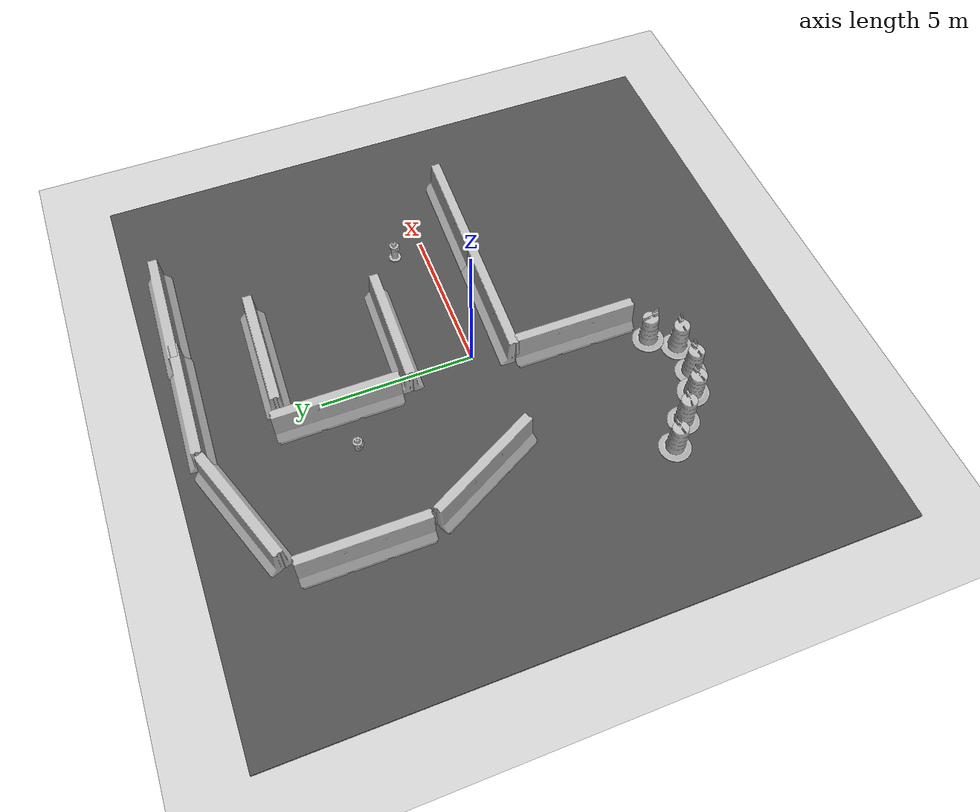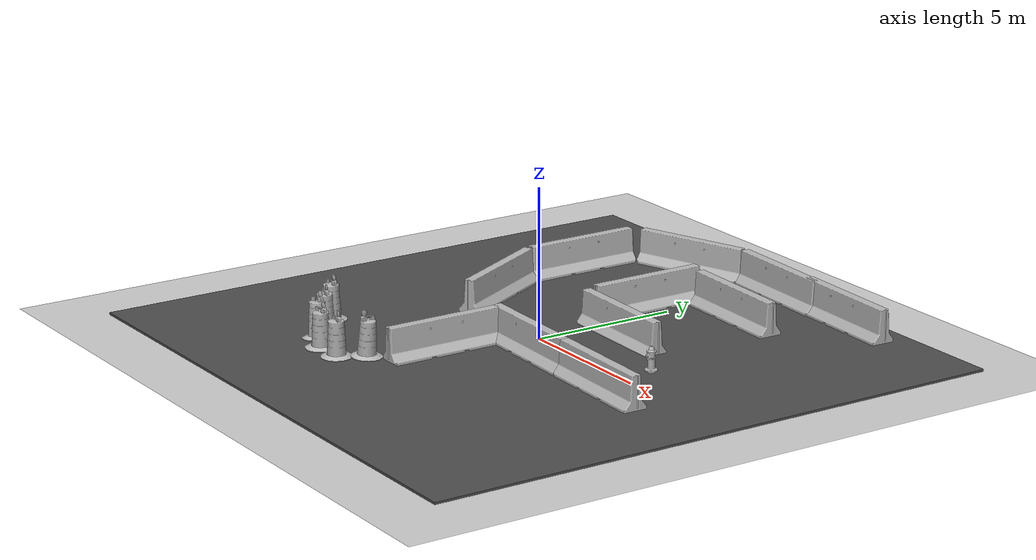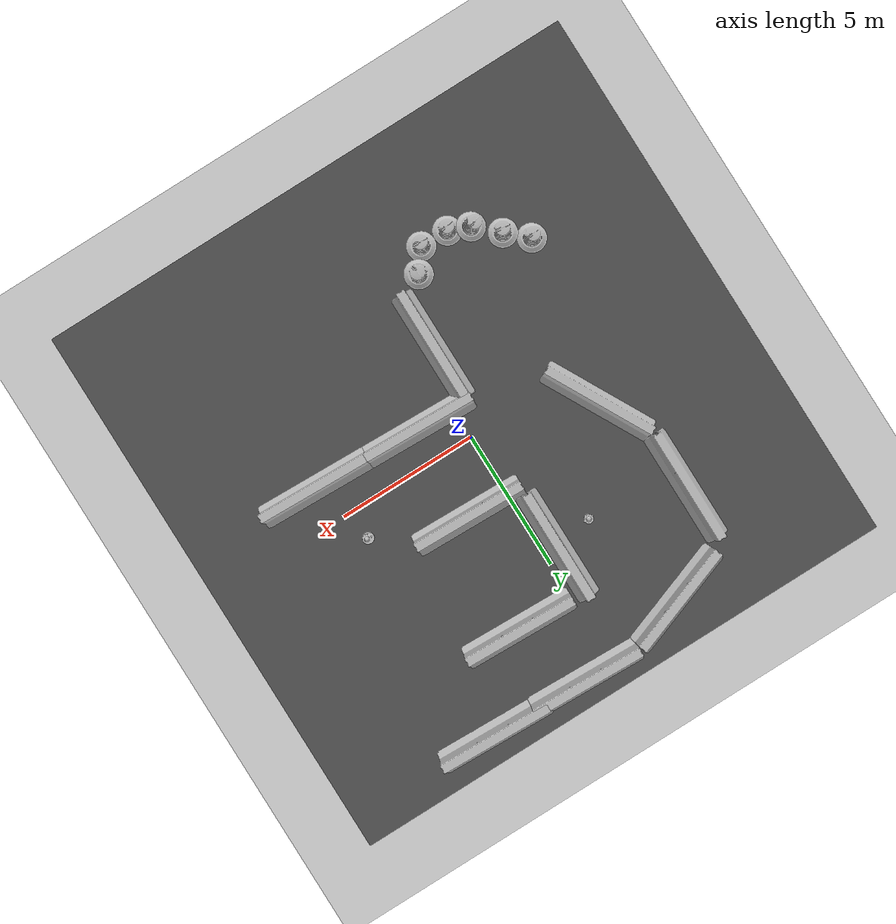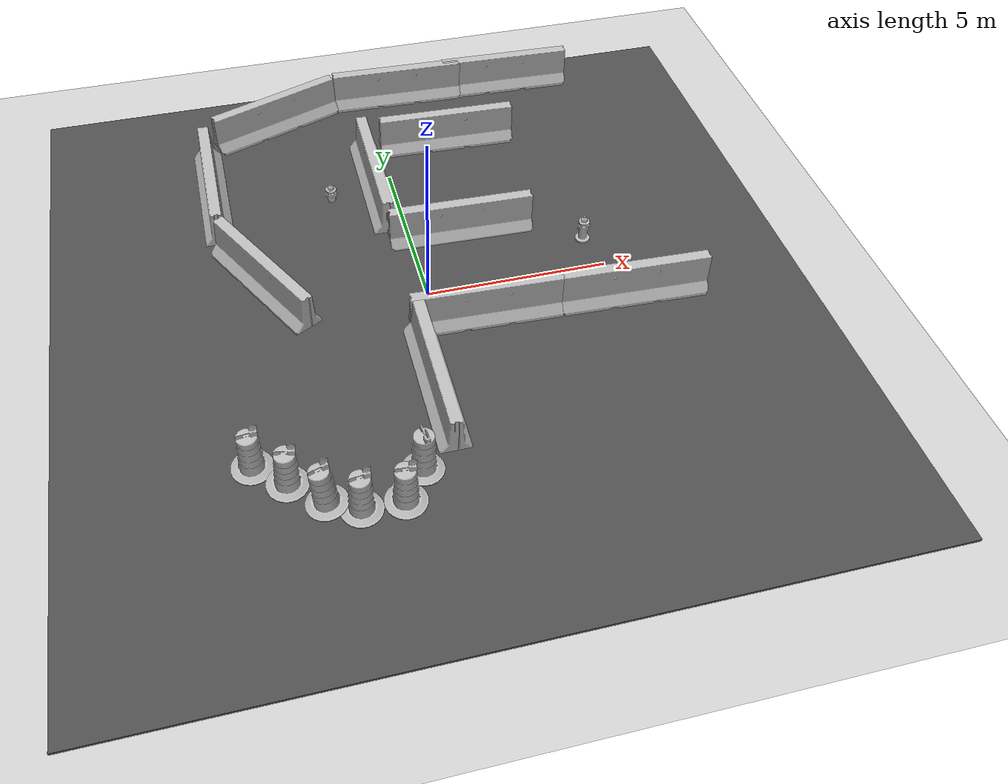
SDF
<sdf version="1.7">
 <world name="default">
  <model name="ground_plane">
   <static>1</static>
   <link name="link">
    <collision name="collision">
     <geometry><plane><normal>0 0 1</normal><size>100 100</size></plane></geometry>
     <surface><friction><ode><mu>100</mu><mu2>50</mu2></ode></friction></surface>
    </collision>
    <visual name="visual">
     <cast_shadows>0</cast_shadows>
     <geometry><plane><normal>0 0 1</normal><size>100 100</size></plane></geometry>
     <material>
      <script><uri>file://media/materials/scripts/gazebo.material</uri><name>Gazebo/Grey</name></script>
     </material>
    </visual>
    <velocity_decay><linear>0</linear><angular>0</angular></velocity_decay>
   </link>
  </model>
  <model name="fire_hydrant_0">
   <static>1</static>
   <link name="link">
    <collision name="collision">
     <geometry><mesh><uri>model://fire_hydrant/meshes/fire_hydrant.dae</uri></mesh></geometry>
    </collision>
    <visual name="visual">
     <geometry><mesh><uri>model://fire_hydrant/meshes/fire_hydrant.dae</uri></mesh></geometry>
    </visual>
    <velocity_decay><linear>0</linear><angular>0</angular></velocity_decay>
   </link>
   <pose>-1.86108 4.37003 -0.313101 0 -0 0</pose>
  </model>
  <model name="fire_hydrant_1">
   <static>1</static>
   <link name="link">
    <collision name="collision">
     <geometry><mesh><uri>model://fire_hydrant/meshes/fire_hydrant.dae</uri></mesh></geometry>
    </collision>
    <visual name="visual">
     <geometry><mesh><uri>model://fire_hydrant/meshes/fire_hydrant.dae</uri></mesh></geometry>
    </visual>
    <velocity_decay><linear>0</linear><angular>0</angular></velocity_decay>
   </link>
   <pose>4.68777 1.01113 0 0 -0 0</pose>
  </model>
  <model name="jersey_barrier_15">
   <static>1</static>
   <link name="link">
    <visual name="visual">
     <geometry><mesh><uri>model://jersey_barrier/meshes/jersey_barrier.dae</uri></mesh></geometry>
    </visual>
    <collision name="upright">
     <pose>0 0 0.5715 0 -0 0</pose>
     <geometry><box><size>4.06542 0.3063 1.143</size></box></geometry>
    </collision>
    <collision name="base">
     <pose>0 0 0.032258 0 -0 0</pose>
     <geometry><box><size>4.06542 0.8107 0.064516</size></box></geometry>
    </collision>
    <collision name="base2">
     <pose>0 0 0.1 0 -0 0</pose>
     <geometry><box><size>4.06542 0.65 0.1</size></box></geometry>
    </collision>
    <collision name="base3">
     <pose>0 0 0.2 0 -0 0</pose>
     <geometry><box><size>4.06542 0.5 0.1</size></box></geometry>
    </collision>
    <collision name="left-angle">
     <pose>0 -0.224 0.2401 0.9 -0 0</pose>
     <geometry><box><size>4.06542 0.5 0.064516</size></box></geometry>
    </collision>
    <collision name="right-angle">
     <pose>0 0.224 0.2401 -0.9 0 0</pose>
     <geometry><box><size>4.06542 0.5 0.064516</size></box></geometry>
    </collision>
    <velocity_decay><linear>0</linear><angular>0</angular></velocity_decay>
   </link>
   <pose>1.44935 2.15698 0 0 -0 3.11496</pose>
  </model>
  <model name="Construction Barrel_0">
   <link name="link">
    <inertial>
     <pose>0 0 0.4 0 -0 0</pose>
     <mass>500</mass>
     <inertia><ixx>51.2096</ixx><iyy>51.2096</iyy><izz>25</izz><ixy>0</ixy><ixz>0</ixz><iyz>0</iyz></inertia>
    </inertial>
    <collision name="collision">
     <geometry><mesh><uri>model://construction_barrel/meshes/construction_barrel.dae</uri></mesh></geometry>
    </collision>
    <visual name="visual">
     <geometry><mesh><uri>model://construction_barrel/meshes/construction_barrel.dae</uri></mesh></geometry>
    </visual>
    <velocity_decay><linear>0</linear><angular>0</angular></velocity_decay>
   </link>
   <pose>-1.99449 -6.2906 0.04979 0.000855 9e-06 -0.076106</pose>
   <static>0</static>
  </model>
  <model name="asphalt_plane">
   <static>1</static>
   <link name="link">
    <collision name="collision"><geometry><box><size>20 20 0.1</size></box></geometry></collision>
    <visual name="visual">
     <cast_shadows>0</cast_shadows>
     <geometry><box><size>20 20 0.1</size></box></geometry>
     <material>
      <script>
       <uri>model://asphalt_plane/materials/scripts</uri>
       <uri>model://asphalt_plane/materials/textures</uri>
       <name>vrc/asphalt</name>
      </script>
     </material>
    </visual>
    <velocity_decay><linear>0</linear><angular>0</angular></velocity_decay>
   </link>
   <pose>0.125329 -0.243752 0 0 -0 0</pose>
  </model>
  <model name="Construction Barrel_1">
   <link name="link">
    <inertial>
     <pose>0 0 0.4 0 -0 0</pose>
     <mass>500</mass>
     <inertia><ixx>51.2096</ixx><iyy>51.2096</iyy><izz>25</izz><ixy>0</ixy><ixz>0</ixz><iyz>0</iyz></inertia>
    </inertial>
    <collision name="collision">
     <geometry><mesh><uri>model://construction_barrel/meshes/construction_barrel.dae</uri></mesh></geometry>
    </collision>
    <visual name="visual">
     <geometry><mesh><uri>model://construction_barrel/meshes/construction_barrel.dae</uri></mesh></geometry>
    </visual>
    <velocity_decay><linear>0</linear><angular>0</angular></velocity_decay>
   </link>
   <pose>-3.00882 -6.26905 0.050156 -4.6e-05 -0.000329 0.113412</pose>
   <static>0</static>
  </model>
  <model name="Construction Barrel_2">
   <link name="link">
    <inertial>
     <pose>0 0 0.4 0 -0 0</pose>
     <mass>500</mass>
     <inertia><ixx>51.2096</ixx><iyy>51.2096</iyy><izz>25</izz><ixy>0</ixy><ixz>0</ixz><iyz>0</iyz></inertia>
    </inertial>
    <collision name="collision">
     <geometry><mesh><uri>model://construction_barrel/meshes/construction_barrel.dae</uri></mesh></geometry>
    </collision>
    <visual name="visual">
     <geometry><mesh><uri>model://construction_barrel/meshes/construction_barrel.dae</uri></mesh></geometry>
    </visual>
    <velocity_decay><linear>0</linear><angular>0</angular></velocity_decay>
   </link>
   <pose>-3.74535 -5.95743 0.102251 -0.062523 -0.082478 0.211353</pose>
   <static>0</static>
  </model>
  <model name="Construction Barrel_3">
   <link name="link">
    <inertial>
     <pose>0 0 0.4 0 -0 0</pose>
     <mass>500</mass>
     <inertia><ixx>51.2096</ixx><iyy>51.2096</iyy><izz>25</izz><ixy>0</ixy><ixz>0</ixz><iyz>0</iyz></inertia>
    </inertial>
    <collision name="collision">
     <geometry><mesh><uri>model://construction_barrel/meshes/construction_barrel.dae</uri></mesh></geometry>
    </collision>
    <visual name="visual">
     <geometry><mesh><uri>model://construction_barrel/meshes/construction_barrel.dae</uri></mesh></geometry>
    </visual>
    <velocity_decay><linear>0</linear><angular>0</angular></velocity_decay>
   </link>
   <pose>-4.5397 -5.2186 0.064282 0.01831 0.023698 -0.14613</pose>
   <static>0</static>
  </model>
  <model name="Construction Barrel_4">
   <link name="link">
    <inertial>
     <pose>0 0 0.4 0 -0 0</pose>
     <mass>500</mass>
     <inertia><ixx>51.2096</ixx><iyy>51.2096</iyy><izz>25</izz><ixy>0</ixy><ixz>0</ixz><iyz>0</iyz></inertia>
    </inertial>
    <collision name="collision">
     <geometry><mesh><uri>model://construction_barrel/meshes/construction_barrel.dae</uri></mesh></geometry>
    </collision>
    <visual name="visual">
     <geometry><mesh><uri>model://construction_barrel/meshes/construction_barrel.dae</uri></mesh></geometry>
    </visual>
    <velocity_decay><linear>0</linear><angular>0</angular></velocity_decay>
   </link>
   <pose>-5.27203 -4.56244 0.049589 0.000925 -0.000409 0.085559</pose>
   <static>0</static>
  </model>
  <model name="Construction Barrel_7">
   <link name="link">
    <inertial>
     <pose>0 0 0.4 0 -0 0</pose>
     <mass>500</mass>
     <inertia><ixx>51.2096</ixx><iyy>51.2096</iyy><izz>25</izz><ixy>0</ixy><ixz>0</ixz><iyz>0</iyz></inertia>
    </inertial>
    <collision name="collision">
     <geometry><mesh><uri>model://construction_barrel/meshes/construction_barrel.dae</uri></mesh></geometry>
    </collision>
    <visual name="visual">
     <geometry><mesh><uri>model://construction_barrel/meshes/construction_barrel.dae</uri></mesh></geometry>
    </visual>
    <velocity_decay><linear>0</linear><angular>0</angular></velocity_decay>
   </link>
   <pose>-1.42111 -5.54265 0.076969 -0.035511 -0.039382 -1.43171</pose>
   <static>0</static>
  </model>
  <model name="jersey_barrier_15_clone">
   <static>1</static>
   <link name="link">
    <visual name="visual">
     <geometry><mesh><uri>model://jersey_barrier/meshes/jersey_barrier.dae</uri></mesh></geometry>
    </visual>
    <collision name="upright">
     <pose>0 0 0.5715 0 -0 0</pose>
     <geometry><box><size>4.06542 0.3063 1.143</size></box></geometry>
    </collision>
    <collision name="base">
     <pose>0 0 0.032258 0 -0 0</pose>
     <geometry><box><size>4.06542 0.8107 0.064516</size></box></geometry>
    </collision>
    <collision name="base2">
     <pose>0 0 0.1 0 -0 0</pose>
     <geometry><box><size>4.06542 0.65 0.1</size></box></geometry>
    </collision>
    <collision name="base3">
     <pose>0 0 0.2 0 -0 0</pose>
     <geometry><box><size>4.06542 0.5 0.1</size></box></geometry>
    </collision>
    <collision name="left-angle">
     <pose>0 -0.224 0.2401 0.9 -0 0</pose>
     <geometry><box><size>4.06542 0.5 0.064516</size></box></geometry>
    </collision>
    <collision name="right-angle">
     <pose>0 0.224 0.2401 -0.9 0 0</pose>
     <geometry><box><size>4.06542 0.5 0.064516</size></box></geometry>
    </collision>
    <velocity_decay><linear>0</linear><angular>0</angular></velocity_decay>
   </link>
   <pose>1.29668 -1.20683 0.055108 0 -0 3.10817</pose>
  </model>
  <model name="jersey_barrier_15_clone_clone">
   <static>1</static>
   <link name="link">
    <visual name="visual">
     <geometry><mesh><uri>model://jersey_barrier/meshes/jersey_barrier.dae</uri></mesh></geometry>
    </visual>
    <collision name="upright">
     <pose>0 0 0.5715 0 -0 0</pose>
     <geometry><box><size>4.06542 0.3063 1.143</size></box></geometry>
    </collision>
    <collision name="base">
     <pose>0 0 0.032258 0 -0 0</pose>
     <geometry><box><size>4.06542 0.8107 0.064516</size></box></geometry>
    </collision>
    <collision name="base2">
     <pose>0 0 0.1 0 -0 0</pose>
     <geometry><box><size>4.06542 0.65 0.1</size></box></geometry>
    </collision>
    <collision name="base3">
     <pose>0 0 0.2 0 -0 0</pose>
     <geometry><box><size>4.06542 0.5 0.1</size></box></geometry>
    </collision>
    <collision name="left-angle">
     <pose>0 -0.224 0.2401 0.9 -0 0</pose>
     <geometry><box><size>4.06542 0.5 0.064516</size></box></geometry>
    </collision>
    <collision name="right-angle">
     <pose>0 0.224 0.2401 -0.9 0 0</pose>
     <geometry><box><size>4.06542 0.5 0.064516</size></box></geometry>
    </collision>
    <velocity_decay><linear>0</linear><angular>0</angular></velocity_decay>
   </link>
   <pose>5.27286 -1.34254 0.055108 0 -0 3.10817</pose>
  </model>
  <model name="jersey_barrier_15_clone_clone_clone_clone_0_clone">
   <static>1</static>
   <link name="link">
    <visual name="visual">
     <geometry><mesh><uri>model://jersey_barrier/meshes/jersey_barrier.dae</uri></mesh></geometry>
    </visual>
    <collision name="upright">
     <pose>0 0 0.5715 0 -0 0</pose>
     <geometry><box><size>4.06542 0.3063 1.143</size></box></geometry>
    </collision>
    <collision name="base">
     <pose>0 0 0.032258 0 -0 0</pose>
     <geometry><box><size>4.06542 0.8107 0.064516</size></box></geometry>
    </collision>
    <collision name="base2">
     <pose>0 0 0.1 0 -0 0</pose>
     <geometry><box><size>4.06542 0.65 0.1</size></box></geometry>
    </collision>
    <collision name="base3">
     <pose>0 0 0.2 0 -0 0</pose>
     <geometry><box><size>4.06542 0.5 0.1</size></box></geometry>
    </collision>
    <collision name="left-angle">
     <pose>0 -0.224 0.2401 0.9 -0 0</pose>
     <geometry><box><size>4.06542 0.5 0.064516</size></box></geometry>
    </collision>
    <collision name="right-angle">
     <pose>0 0.224 0.2401 -0.9 0 0</pose>
     <geometry><box><size>4.06542 0.5 0.064516</size></box></geometry>
    </collision>
    <velocity_decay><linear>0</linear><angular>0</angular></velocity_decay>
   </link>
   <pose>4.56586 8.75815 0.055108 0 -0 3.10817</pose>
  </model>
  <model name="jersey_barrier_15_clone_clone_clone_clone_0_clone_0">
   <static>1</static>
   <link name="link">
    <visual name="visual">
     <geometry><mesh><uri>model://jersey_barrier/meshes/jersey_barrier.dae</uri></mesh></geometry>
    </visual>
    <collision name="upright">
     <pose>0 0 0.5715 0 -0 0</pose>
     <geometry><box><size>4.06542 0.3063 1.143</size></box></geometry>
    </collision>
    <collision name="base">
     <pose>0 0 0.032258 0 -0 0</pose>
     <geometry><box><size>4.06542 0.8107 0.064516</size></box></geometry>
    </collision>
    <collision name="base2">
     <pose>0 0 0.1 0 -0 0</pose>
     <geometry><box><size>4.06542 0.65 0.1</size></box></geometry>
    </collision>
    <collision name="base3">
     <pose>0 0 0.2 0 -0 0</pose>
     <geometry><box><size>4.06542 0.5 0.1</size></box></geometry>
    </collision>
    <collision name="left-angle">
     <pose>0 -0.224 0.2401 0.9 -0 0</pose>
     <geometry><box><size>4.06542 0.5 0.064516</size></box></geometry>
    </collision>
    <collision name="right-angle">
     <pose>0 0.224 0.2401 -0.9 0 0</pose>
     <geometry><box><size>4.06542 0.5 0.064516</size></box></geometry>
    </collision>
    <velocity_decay><linear>0</linear><angular>0</angular></velocity_decay>
   </link>
   <pose>1.04631 8.83387 0.055108 0 -0 3.10817</pose>
  </model>
  <model name="jersey_barrier_15_clone_clone_clone_clone_0_clone_1">
   <static>1</static>
   <link name="link">
    <visual name="visual">
     <geometry><mesh><uri>model://jersey_barrier/meshes/jersey_barrier.dae</uri></mesh></geometry>
    </visual>
    <collision name="upright">
     <pose>0 0 0.5715 0 -0 0</pose>
     <geometry><box><size>4.06542 0.3063 1.143</size></box></geometry>
    </collision>
    <collision name="base">
     <pose>0 0 0.032258 0 -0 0</pose>
     <geometry><box><size>4.06542 0.8107 0.064516</size></box></geometry>
    </collision>
    <collision name="base2">
     <pose>0 0 0.1 0 -0 0</pose>
     <geometry><box><size>4.06542 0.65 0.1</size></box></geometry>
    </collision>
    <collision name="base3">
     <pose>0 0 0.2 0 -0 0</pose>
     <geometry><box><size>4.06542 0.5 0.1</size></box></geometry>
    </collision>
    <collision name="left-angle">
     <pose>0 -0.224 0.2401 0.9 -0 0</pose>
     <geometry><box><size>4.06542 0.5 0.064516</size></box></geometry>
    </collision>
    <collision name="right-angle">
     <pose>0 0.224 0.2401 -0.9 0 0</pose>
     <geometry><box><size>4.06542 0.5 0.064516</size></box></geometry>
    </collision>
    <velocity_decay><linear>0</linear><angular>0</angular></velocity_decay>
   </link>
   <pose>-2.95018 8.17914 0.055108 -0.003994 0.001583 -2.79759</pose>
  </model>
  <model name="jersey_barrier_15_clone_clone_clone_clone_clone">
   <static>1</static>
   <link name="link">
    <visual name="visual">
     <geometry><mesh><uri>model://jersey_barrier/meshes/jersey_barrier.dae</uri></mesh></geometry>
    </visual>
    <collision name="upright">
     <pose>0 0 0.5715 0 -0 0</pose>
     <geometry><box><size>4.06542 0.3063 1.143</size></box></geometry>
    </collision>
    <collision name="base">
     <pose>0 0 0.032258 0 -0 0</pose>
     <geometry><box><size>4.06542 0.8107 0.064516</size></box></geometry>
    </collision>
    <collision name="base2">
     <pose>0 0 0.1 0 -0 0</pose>
     <geometry><box><size>4.06542 0.65 0.1</size></box></geometry>
    </collision>
    <collision name="base3">
     <pose>0 0 0.2 0 -0 0</pose>
     <geometry><box><size>4.06542 0.5 0.1</size></box></geometry>
    </collision>
    <collision name="left-angle">
     <pose>0 -0.224 0.2401 0.9 -0 0</pose>
     <geometry><box><size>4.06542 0.5 0.064516</size></box></geometry>
    </collision>
    <collision name="right-angle">
     <pose>0 0.224 0.2401 -0.9 0 0</pose>
     <geometry><box><size>4.06542 0.5 0.064516</size></box></geometry>
    </collision>
    <velocity_decay><linear>0</linear><angular>0</angular></velocity_decay>
   </link>
   <pose>2.0302 6.22951 0.055108 0 -0 3.10817</pose>
  </model>
  <model name="jersey_barrier_15_clone_clone_clone_1_clone_clone">
   <static>1</static>
   <link name="link">
    <visual name="visual">
     <geometry><mesh><uri>model://jersey_barrier/meshes/jersey_barrier.dae</uri></mesh></geometry>
    </visual>
    <collision name="upright">
     <pose>0 0 0.5715 0 -0 0</pose>
     <geometry><box><size>4.06542 0.3063 1.143</size></box></geometry>
    </collision>
    <collision name="base">
     <pose>0 0 0.032258 0 -0 0</pose>
     <geometry><box><size>4.06542 0.8107 0.064516</size></box></geometry>
    </collision>
    <collision name="base2">
     <pose>0 0 0.1 0 -0 0</pose>
     <geometry><box><size>4.06542 0.65 0.1</size></box></geometry>
    </collision>
    <collision name="base3">
     <pose>0 0 0.2 0 -0 0</pose>
     <geometry><box><size>4.06542 0.5 0.1</size></box></geometry>
    </collision>
    <collision name="left-angle">
     <pose>0 -0.224 0.2401 0.9 -0 0</pose>
     <geometry><box><size>4.06542 0.5 0.064516</size></box></geometry>
    </collision>
    <collision name="right-angle">
     <pose>0 0.224 0.2401 -0.9 0 0</pose>
     <geometry><box><size>4.06542 0.5 0.064516</size></box></geometry>
    </collision>
    <velocity_decay><linear>0</linear><angular>0</angular></velocity_decay>
   </link>
   <pose>-0.521663 4.57037 0.055108 0 0 -1.57345</pose>
  </model>
  <model name="jersey_barrier_15_clone_clone_clone_1_clone_clone_0">
   <static>1</static>
   <link name="link">
    <visual name="visual">
     <geometry><mesh><uri>model://jersey_barrier/meshes/jersey_barrier.dae</uri></mesh></geometry>
    </visual>
    <collision name="upright">
     <pose>0 0 0.5715 0 -0 0</pose>
     <geometry><box><size>4.06542 0.3063 1.143</size></box></geometry>
    </collision>
    <collision name="base">
     <pose>0 0 0.032258 0 -0 0</pose>
     <geometry><box><size>4.06542 0.8107 0.064516</size></box></geometry>
    </collision>
    <collision name="base2">
     <pose>0 0 0.1 0 -0 0</pose>
     <geometry><box><size>4.06542 0.65 0.1</size></box></geometry>
    </collision>
    <collision name="base3">
     <pose>0 0 0.2 0 -0 0</pose>
     <geometry><box><size>4.06542 0.5 0.1</size></box></geometry>
    </collision>
    <collision name="left-angle">
     <pose>0 -0.224 0.2401 0.9 -0 0</pose>
     <geometry><box><size>4.06542 0.5 0.064516</size></box></geometry>
    </collision>
    <collision name="right-angle">
     <pose>0 0.224 0.2401 -0.9 0 0</pose>
     <geometry><box><size>4.06542 0.5 0.064516</size></box></geometry>
    </collision>
    <velocity_decay><linear>0</linear><angular>0</angular></velocity_decay>
   </link>
   <pose>-5.20076 5.16947 0.055108 0 0 -1.57345</pose>
  </model>
  <model name="jersey_barrier_15_clone_clone_clone_1_clone_clone_1">
   <static>1</static>
   <link name="link">
    <visual name="visual">
     <geometry><mesh><uri>model://jersey_barrier/meshes/jersey_barrier.dae</uri></mesh></geometry>
    </visual>
    <collision name="upright">
     <pose>0 0 0.5715 0 -0 0</pose>
     <geometry><box><size>4.06542 0.3063 1.143</size></box></geometry>
    </collision>
    <collision name="base">
     <pose>0 0 0.032258 0 -0 0</pose>
     <geometry><box><size>4.06542 0.8107 0.064516</size></box></geometry>
    </collision>
    <collision name="base2">
     <pose>0 0 0.1 0 -0 0</pose>
     <geometry><box><size>4.06542 0.65 0.1</size></box></geometry>
    </collision>
    <collision name="base3">
     <pose>0 0 0.2 0 -0 0</pose>
     <geometry><box><size>4.06542 0.5 0.1</size></box></geometry>
    </collision>
    <collision name="left-angle">
     <pose>0 -0.224 0.2401 0.9 -0 0</pose>
     <geometry><box><size>4.06542 0.5 0.064516</size></box></geometry>
    </collision>
    <collision name="right-angle">
     <pose>0 0.224 0.2401 -0.9 0 0</pose>
     <geometry><box><size>4.06542 0.5 0.064516</size></box></geometry>
    </collision>
    <velocity_decay><linear>0</linear><angular>0</angular></velocity_decay>
   </link>
   <pose>-4.21671 1.21707 0.055108 0 0 -1.0823</pose>
  </model>
  <model name="jersey_barrier_15_clone_clone_clone_1_clone_clone_2">
   <static>1</static>
   <link name="link">
    <visual name="visual">
     <geometry><mesh><uri>model://jersey_barrier/meshes/jersey_barrier.dae</uri></mesh></geometry>
    </visual>
    <collision name="upright">
     <pose>0 0 0.5715 0 -0 0</pose>
     <geometry><box><size>4.06542 0.3063 1.143</size></box></geometry>
    </collision>
    <collision name="base">
     <pose>0 0 0.032258 0 -0 0</pose>
     <geometry><box><size>4.06542 0.8107 0.064516</size></box></geometry>
    </collision>
    <collision name="base2">
     <pose>0 0 0.1 0 -0 0</pose>
     <geometry><box><size>4.06542 0.65 0.1</size></box></geometry>
    </collision>
    <collision name="base3">
     <pose>0 0 0.2 0 -0 0</pose>
     <geometry><box><size>4.06542 0.5 0.1</size></box></geometry>
    </collision>
    <collision name="left-angle">
     <pose>0 -0.224 0.2401 0.9 -0 0</pose>
     <geometry><box><size>4.06542 0.5 0.064516</size></box></geometry>
    </collision>
    <collision name="right-angle">
     <pose>0 0.224 0.2401 -0.9 0 0</pose>
     <geometry><box><size>4.06542 0.5 0.064516</size></box></geometry>
    </collision>
    <velocity_decay><linear>0</linear><angular>0</angular></velocity_decay>
   </link>
   <pose>-0.550815 -3.23764 0.055108 0 0 -1.57345</pose>
  </model>
 </world>
</sdf>
